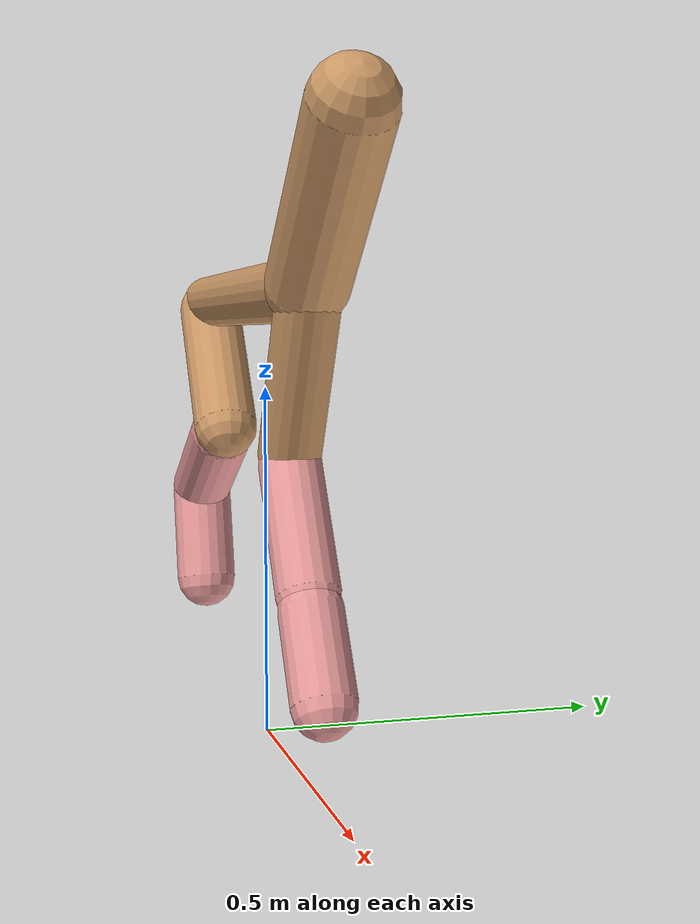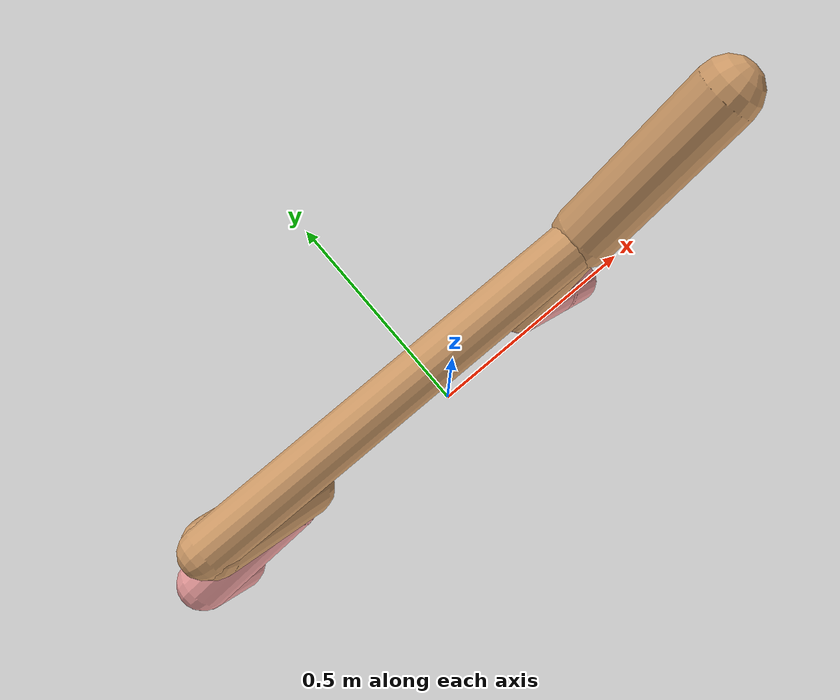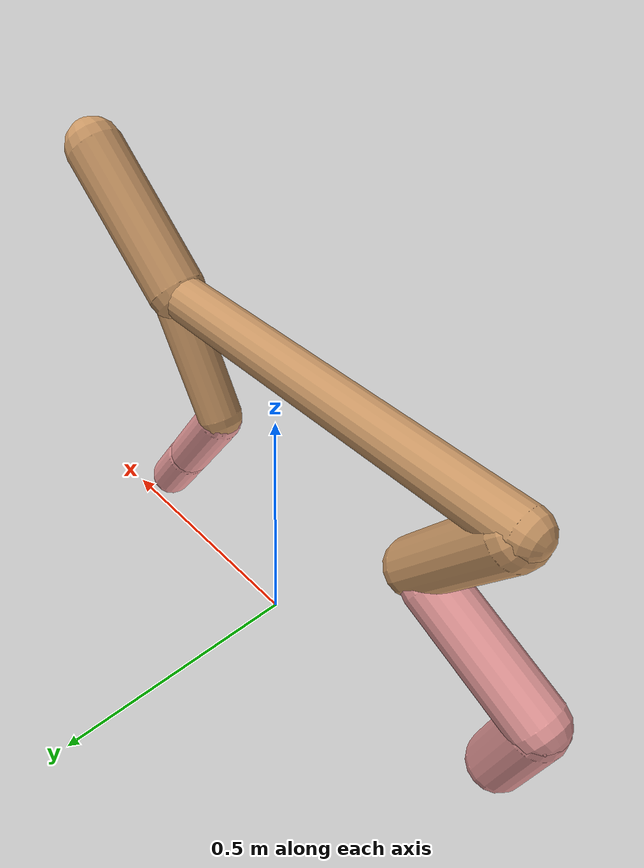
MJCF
<mujoco model="cheetah">
  <compiler angle="radian" coordinate="local" inertiafromgeom="true" settotalmass="14" />
  <default>
    <joint armature=".1" damping=".01" limited="true" solimplimit="0 .8 .03" solreflimit=".02 1" stiffness="8" />
    <geom conaffinity="0" condim="3" contype="1" friction="0.8 .1 .1" rgba="0.8 0.6 .4 1" solimp="0.0 0.8 0.01" solref="0.02 1" />
    <motor ctrllimited="true" ctrlrange="-1 1" />
  </default>
  <size nstack="300000" nuser_geom="1" />
  <option gravity="0 0 -9.81" timestep="0.01" />
  <worldbody>
    <body name="torso" pos="0.0 0.0 0.6333721581397465">
      <joint armature="0" axis="1 0 0" damping="0" limited="false" name="ignorex" pos="0 0 0" stiffness="0" type="slide" />
      <joint armature="0" axis="0 0 1" damping="0" limited="false" name="ignorez" pos="0 0 0" stiffness="0" type="slide" />
      <joint armature="0" axis="0 1 0" damping="0" limited="false" name="ignorey" pos="0 0 0" stiffness="0" type="hinge" />
      <geom fromto="-0.5 0.0 0.0 0.28910822465596464 0.0 0.0" name="torso" size="0.04302718105435525" type="capsule" />
      <geom axisangle="0 1 0 .87" name="head" pos="0.3891082246559646 0.0 0.1" size="0.05503197980771494 0.15" type="capsule" />

      <body name="bthigh" pos="-.5 0 0">
        <joint axis="0 1 0" damping="6" name="bthigh" pos="0 0 0" range="-.52 1.05" stiffness="240" type="hinge" />
        <geom axisangle="0 1 0 -3.8" name="bthigh" pos="0.08682519190005282 0.0 -0.11287274947006867" size="0.051569462724663874 0.12339170809190446" type="capsule" />
        <body name="bshin" pos="0.13365038380010563 0.0 -0.21574549894013734">
          <joint axis="0 1 0" damping="4.5" name="bshin" pos="0 0 0" range="-.785 .785" stiffness="180" type="hinge" />
          <geom axisangle="0 1 0 -2.03" name="bshin" pos="-0.12000650637896818 0.0 -0.06000325318948409" rgba="0.9 0.6 0.6 1" size="0.051569462724663874 0.1276465945778322" type="capsule" />
          <body name="bfoot" pos="-0.24001301275793635 0.0 -0.12000650637896818">
            <joint axis="0 1 0" damping="3" name="bfoot" pos="0 0 0" range="-.4 .785" stiffness="120" type="hinge" />
            <geom axisangle="0 1 0 -.27" name="bfoot" pos="0.025861020509289727 0.0 -0.08361729964670345" rgba="0.9 0.6 0.6 1" size="0.051569462724663874 0.07999186593544151" type="capsule" />
            <inertial mass="10" />
          </body>
        </body>
      </body>
      <body name="fthigh" pos="0.28910822465596464 0.0 0.0">
        <joint axis="0 1 0" damping="4.5" name="fthigh" pos="0 0 0" range="-1.5 0.8" stiffness="180" type="hinge" />
        <geom axisangle="0 1 0 .52" name="fthigh" pos="-0.06532944080766163 0.0 -0.11199332709884849" size="0.042796175491222624 0.12373064543157561" type="capsule" />
        <body name="fshin" pos="-0.13065888161532327 0.0 -0.22398665419769698">
          <joint axis="0 1 0" damping="3" name="fshin" pos="0 0 0" range="-1.2 1.1" stiffness="120" type="hinge" />
          <geom axisangle="0 1 0 -.6" name="fshin" pos="0.06067462653199299 0.0 -0.08401102135199029" rgba="0.9 0.6 0.6 1" size="0.042796175491222624 0.098612394103361" type="capsule" />
          <body name="ffoot" pos="0.12134925306398597 0.0 -0.16802204270398058">
            <joint axis="0 1 0" damping="1.5" name="ffoot" pos="0 0 0" range="-3.1 -0.3" stiffness="60" type="hinge" />
            <geom axisangle="0 1 0 -.6" name="ffoot" pos="0.0423618558687095 0.0 -0.06589622024021478" rgba="0.9 0.6 0.6 1" size="0.042796175491222624 0.06512139233240821" type="capsule" />
            <inertial mass="10" />
          </body>
        </body>
      </body>
    </body>
  </worldbody>
  <actuator>
    <motor gear="120" joint="bthigh" name="bthigh" />
    <motor gear="90" joint="bshin" name="bshin" />
    <motor gear="60" joint="bfoot" name="bfoot" />
    <motor gear="120" joint="fthigh" name="fthigh" />
    <motor gear="60" joint="fshin" name="fshin" />
    <motor gear="30" joint="ffoot" name="ffoot" />
  </actuator>
</mujoco>
